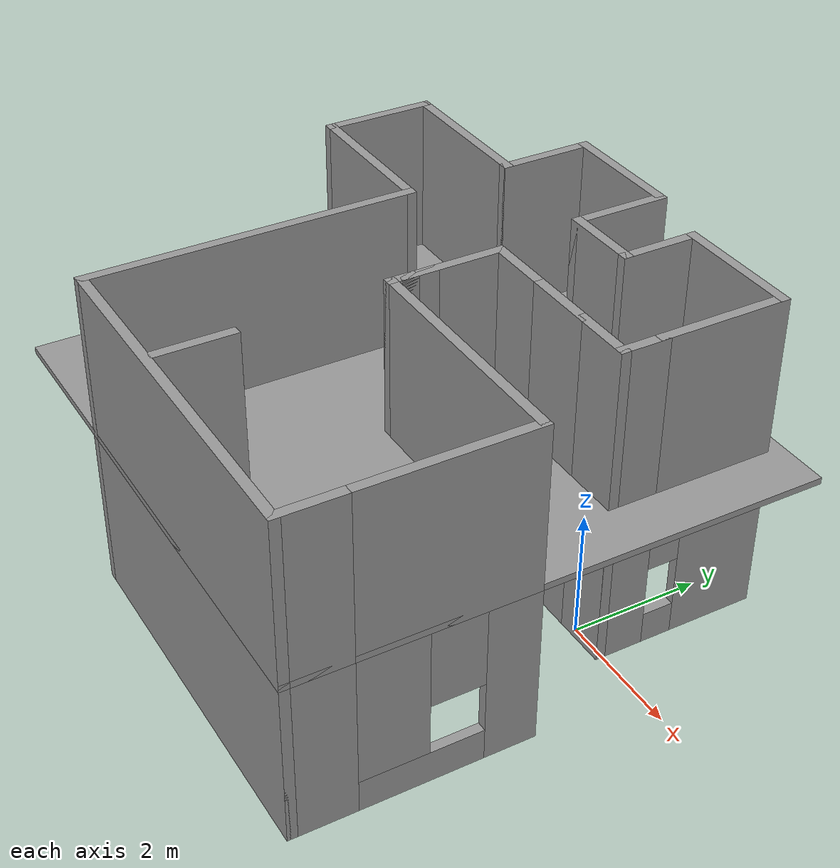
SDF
<?xml version='1.0'?>
<sdf version='1.6'>
  <model name='lidar_basic_building'>
    <pose frame=''>-2.615 -1.23 0 0 -0 0</pose>
    <link name='Floor_3'>
      <collision name='Floor_3_Collision'>
        <geometry>
          <box>
            <size>8.1 7.95 0.1</size>
          </box>
        </geometry>
        <pose frame=''>0 0 0.05 0 -0 0</pose>
      </collision>
      <visual name='Floor_3_Visual'>
        <pose frame=''>0 0 0.05 0 -0 0</pose>
        <geometry>
          <box>
            <size>8.1 7.95 0.1</size>
          </box>
        </geometry>
        <material>
          <script>
            <uri>file://media/materials/scripts/gazebo.material</uri>
            <name>Gazebo/Grey</name>
          </script>
          <ambient>1 1 1 1</ambient>
        </material>
        <meta>
          <layer>1</layer>
        </meta>
      </visual>
      <pose frame=''>0 -0 2.5 0 -0 0</pose>
    </link>
    <link name='Wall_10'>
      <collision name='Wall_10_Collision'>
        <geometry>
          <box>
            <size>1.5 0.15 2.5</size>
          </box>
        </geometry>
        <pose frame=''>0 0 1.25 0 -0 0</pose>
      </collision>
      <visual name='Wall_10_Visual'>
        <pose frame=''>0 0 1.25 0 -0 0</pose>
        <geometry>
          <box>
            <size>1.5 0.15 2.5</size>
          </box>
        </geometry>
        <material>
          <script>
            <uri>file://media/materials/scripts/gazebo.material</uri>
            <name>Gazebo/Grey</name>
          </script>
          <ambient>1 1 1 1</ambient>
        </material>
        <meta>
          <layer>0</layer>
        </meta>
      </visual>
      <pose frame=''>-1.625 3.225 0 0 -0 1.5708</pose>
    </link>
    <link name='Wall_102'>
      <collision name='Wall_102_Collision'>
        <geometry>
          <box>
            <size>3.75 0.15 2.5</size>
          </box>
        </geometry>
        <pose frame=''>0 0 1.25 0 -0 0</pose>
      </collision>
      <visual name='Wall_102_Visual'>
        <pose frame=''>0 0 1.25 0 -0 0</pose>
        <geometry>
          <box>
            <size>3.75 0.15 2.5</size>
          </box>
        </geometry>
        <material>
          <script>
            <uri>file://media/materials/scripts/gazebo.material</uri>
            <name>Gazebo/Grey</name>
          </script>
          <ambient>1 1 1 1</ambient>
        </material>
        <meta>
          <layer>0</layer>
        </meta>
      </visual>
      <pose frame=''>2.175 -0.45 0 0 -0 3.14159</pose>
    </link>
    <link name='Wall_103'>
      <collision name='Wall_103_Collision'>
        <geometry>
          <box>
            <size>0.75 0.15 2.5</size>
          </box>
        </geometry>
        <pose frame=''>0 0 1.25 0 -0 0</pose>
      </collision>
      <visual name='Wall_103_Visual'>
        <pose frame=''>0 0 1.25 0 -0 0</pose>
        <geometry>
          <box>
            <size>0.75 0.15 2.5</size>
          </box>
        </geometry>
        <material>
          <script>
            <uri>file://media/materials/scripts/gazebo.material</uri>
            <name>Gazebo/Grey</name>
          </script>
          <ambient>1 1 1 1</ambient>
        </material>
        <meta>
          <layer>0</layer>
        </meta>
      </visual>
      <pose frame=''>0.375 -0.15 0 0 -0 1.5708</pose>
    </link>
    <link name='Wall_105'>
      <collision name='Wall_105_Collision'>
        <geometry>
          <box>
            <size>1.25 0.15 2.5</size>
          </box>
        </geometry>
        <pose frame=''>0 0 1.25 0 -0 0</pose>
      </collision>
      <visual name='Wall_105_Visual'>
        <pose frame=''>0 0 1.25 0 -0 0</pose>
        <geometry>
          <box>
            <size>1.25 0.15 2.5</size>
          </box>
        </geometry>
        <material>
          <script>
            <uri>file://media/materials/scripts/gazebo.material</uri>
            <name>Gazebo/Grey</name>
          </script>
          <ambient>1 1 1 1</ambient>
        </material>
        <meta>
          <layer>0</layer>
        </meta>
      </visual>
      <pose frame=''>0.4735 -3.28546 0 0 -0 1.5708</pose>
    </link>
    <link name='Wall_107'>
      <collision name='Wall_107_Collision'>
        <geometry>
          <box>
            <size>2.75 0.15 2.5</size>
          </box>
        </geometry>
        <pose frame=''>0 0 1.25 0 -0 0</pose>
      </collision>
      <visual name='Wall_107_Visual'>
        <pose frame=''>0 0 1.25 0 -0 0</pose>
        <geometry>
          <box>
            <size>2.75 0.15 2.5</size>
          </box>
        </geometry>
        <material>
          <script>
            <uri>file://media/materials/scripts/gazebo.material</uri>
            <name>Gazebo/Grey</name>
          </script>
          <ambient>1 1 1 1</ambient>
        </material>
        <meta>
          <layer>1</layer>
        </meta>
      </visual>
      <pose frame=''>3.975 -1.75 2.5 0 -0 -1.5708</pose>
    </link>
    <link name='Wall_108'>
      <collision name='Wall_108_Collision'>
        <geometry>
          <box>
            <size>1 0.15 2.5</size>
          </box>
        </geometry>
        <pose frame=''>0 0 1.25 0 -0 0</pose>
      </collision>
      <visual name='Wall_108_Visual'>
        <pose frame=''>0 0 1.25 0 -0 0</pose>
        <geometry>
          <box>
            <size>1 0.15 2.5</size>
          </box>
        </geometry>
        <material>
          <script>
            <uri>file://media/materials/scripts/gazebo.material</uri>
            <name>Gazebo/Grey</name>
          </script>
          <ambient>1 1 1 1</ambient>
        </material>
        <meta>
          <layer>1</layer>
        </meta>
      </visual>
      <pose frame=''>3.975 -3.475 2.5 0 -0 -1.5708</pose>
    </link>
    <link name='Wall_109'>
      <collision name='Wall_109_Collision'>
        <geometry>
          <box>
            <size>5.75 0.15 2.5</size>
          </box>
        </geometry>
        <pose frame=''>0 0 1.25 0 -0 0</pose>
      </collision>
      <visual name='Wall_109_Visual'>
        <pose frame=''>0 0 1.25 0 -0 0</pose>
        <geometry>
          <box>
            <size>5.75 0.15 2.5</size>
          </box>
        </geometry>
        <material>
          <script>
            <uri>file://media/materials/scripts/gazebo.material</uri>
            <name>Gazebo/Grey</name>
          </script>
          <ambient>1 1 1 1</ambient>
        </material>
        <meta>
          <layer>1</layer>
        </meta>
      </visual>
      <pose frame=''>1.175 -3.9 2.5 0 -0 3.14159</pose>
    </link>
    <link name='Wall_11'>
      <pose frame=''>-0.7 3.9 0 0 -0 0</pose>
      <visual name='Wall_11_Visual_0'>
        <pose frame=''>-0.743057 0 1.25 0 -0 0</pose>
        <geometry>
          <box>
            <size>0.513887 0.15 2.5</size>
          </box>
        </geometry>
        <material>
          <script>
            <uri>file://media/materials/scripts/gazebo.material</uri>
            <name>Gazebo/Grey</name>
          </script>
          <ambient>1 1 1 1</ambient>
        </material>
        <meta>
          <layer>0</layer>
        </meta>
      </visual>
      <collision name='Wall_11_Collision_0'>
        <geometry>
          <box>
            <size>0.513887 0.15 2.5</size>
          </box>
        </geometry>
        <pose frame=''>-0.743057 0 1.25 0 -0 0</pose>
      </collision>
      <visual name='Wall_11_Visual_1'>
        <pose frame=''>0.706943 0 1.25 0 -0 0</pose>
        <geometry>
          <box>
            <size>0.586113 0.15 2.5</size>
          </box>
        </geometry>
        <material>
          <script>
            <uri>file://media/materials/scripts/gazebo.material</uri>
            <name>Gazebo/Grey</name>
          </script>
          <ambient>1 1 1 1</ambient>
        </material>
        <meta>
          <layer>0</layer>
        </meta>
      </visual>
      <collision name='Wall_11_Collision_1'>
        <geometry>
          <box>
            <size>0.586113 0.15 2.5</size>
          </box>
        </geometry>
        <pose frame=''>0.706943 0 1.25 0 -0 0</pose>
      </collision>
      <visual name='Wall_11_Visual_2'>
        <pose frame=''>-0.036113 0 2.25 0 -0 0</pose>
        <geometry>
          <box>
            <size>0.9 0.15 0.5</size>
          </box>
        </geometry>
        <material>
          <script>
            <uri>file://media/materials/scripts/gazebo.material</uri>
            <name>Gazebo/Grey</name>
          </script>
          <ambient>1 1 1 1</ambient>
        </material>
        <meta>
          <layer>0</layer>
        </meta>
      </visual>
      <collision name='Wall_11_Collision_2'>
        <geometry>
          <box>
            <size>0.9 0.15 0.5</size>
          </box>
        </geometry>
        <pose frame=''>-0.036113 0 2.25 0 -0 0</pose>
      </collision>
    </link>
    <link name='Wall_110'>
      <collision name='Wall_110_Collision'>
        <geometry>
          <box>
            <size>5 0.15 2.5</size>
          </box>
        </geometry>
        <pose frame=''>0 0 1.25 0 -0 0</pose>
      </collision>
      <visual name='Wall_110_Visual'>
        <pose frame=''>0 0 1.25 0 -0 0</pose>
        <geometry>
          <box>
            <size>5 0.15 2.5</size>
          </box>
        </geometry>
        <material>
          <script>
            <uri>file://media/materials/scripts/gazebo.material</uri>
            <name>Gazebo/Grey</name>
          </script>
          <ambient>1 1 1 1</ambient>
        </material>
        <meta>
          <layer>1</layer>
        </meta>
      </visual>
      <pose frame=''>-1.625 -1.475 2.5 0 -0 1.5708</pose>
    </link>
    <link name='Wall_111'>
      <collision name='Wall_111_Collision'>
        <geometry>
          <box>
            <size>2.5 0.15 2.5</size>
          </box>
        </geometry>
        <pose frame=''>0 0 1.25 0 -0 0</pose>
      </collision>
      <visual name='Wall_111_Visual'>
        <pose frame=''>0 0 1.25 0 -0 0</pose>
        <geometry>
          <box>
            <size>2.5 0.15 2.5</size>
          </box>
        </geometry>
        <material>
          <script>
            <uri>file://media/materials/scripts/gazebo.material</uri>
            <name>Gazebo/Grey</name>
          </script>
          <ambient>1 1 1 1</ambient>
        </material>
        <meta>
          <layer>1</layer>
        </meta>
      </visual>
      <pose frame=''>-2.8 0.95 2.5 0 -0 3.14159</pose>
    </link>
    <link name='Wall_112'>
      <collision name='Wall_112_Collision'>
        <geometry>
          <box>
            <size>1.75 0.15 2.5</size>
          </box>
        </geometry>
        <pose frame=''>0 0 1.25 0 -0 0</pose>
      </collision>
      <visual name='Wall_112_Visual'>
        <pose frame=''>0 0 1.25 0 -0 0</pose>
        <geometry>
          <box>
            <size>1.75 0.15 2.5</size>
          </box>
        </geometry>
        <material>
          <script>
            <uri>file://media/materials/scripts/gazebo.material</uri>
            <name>Gazebo/Grey</name>
          </script>
          <ambient>1 1 1 1</ambient>
        </material>
        <meta>
          <layer>1</layer>
        </meta>
      </visual>
      <pose frame=''>-3.975 1.75 2.5 0 -0 1.5708</pose>
    </link>
    <link name='Wall_113'>
      <collision name='Wall_113_Collision'>
        <geometry>
          <box>
            <size>2.5 0.15 2.5</size>
          </box>
        </geometry>
        <pose frame=''>0 0 1.25 0 -0 0</pose>
      </collision>
      <visual name='Wall_113_Visual'>
        <pose frame=''>0 0 1.25 0 -0 0</pose>
        <geometry>
          <box>
            <size>2.5 0.15 2.5</size>
          </box>
        </geometry>
        <material>
          <script>
            <uri>file://media/materials/scripts/gazebo.material</uri>
            <name>Gazebo/Grey</name>
          </script>
          <ambient>1 1 1 1</ambient>
        </material>
        <meta>
          <layer>1</layer>
        </meta>
      </visual>
      <pose frame=''>-2.8 2.55 2.5 0 -0 0</pose>
    </link>
    <link name='Wall_114'>
      <collision name='Wall_114_Collision'>
        <geometry>
          <box>
            <size>1.5 0.15 2.5</size>
          </box>
        </geometry>
        <pose frame=''>0 0 1.25 0 -0 0</pose>
      </collision>
      <visual name='Wall_114_Visual'>
        <pose frame=''>0 0 1.25 0 -0 0</pose>
        <geometry>
          <box>
            <size>1.5 0.15 2.5</size>
          </box>
        </geometry>
        <material>
          <script>
            <uri>file://media/materials/scripts/gazebo.material</uri>
            <name>Gazebo/Grey</name>
          </script>
          <ambient>1 1 1 1</ambient>
        </material>
        <meta>
          <layer>1</layer>
        </meta>
      </visual>
      <pose frame=''>-1.625 3.225 2.5 0 -0 1.5708</pose>
    </link>
    <link name='Wall_115'>
      <collision name='Wall_115_Collision'>
        <geometry>
          <box>
            <size>2 0.15 2.5</size>
          </box>
        </geometry>
        <pose frame=''>0 0 1.25 0 -0 0</pose>
      </collision>
      <visual name='Wall_115_Visual'>
        <pose frame=''>0 0 1.25 0 -0 0</pose>
        <geometry>
          <box>
            <size>2 0.15 2.5</size>
          </box>
        </geometry>
        <material>
          <script>
            <uri>file://media/materials/scripts/gazebo.material</uri>
            <name>Gazebo/Grey</name>
          </script>
          <ambient>1 1 1 1</ambient>
        </material>
        <meta>
          <layer>1</layer>
        </meta>
      </visual>
      <pose frame=''>-0.7 3.9 2.5 0 -0 0</pose>
    </link>
    <link name='Wall_116'>
      <collision name='Wall_116_Collision'>
        <geometry>
          <box>
            <size>1.5 0.15 2.5</size>
          </box>
        </geometry>
        <pose frame=''>0 0 1.25 0 -0 0</pose>
      </collision>
      <visual name='Wall_116_Visual'>
        <pose frame=''>0 0 1.25 0 -0 0</pose>
        <geometry>
          <box>
            <size>1.5 0.15 2.5</size>
          </box>
        </geometry>
        <material>
          <script>
            <uri>file://media/materials/scripts/gazebo.material</uri>
            <name>Gazebo/Grey</name>
          </script>
          <ambient>1 1 1 1</ambient>
        </material>
        <meta>
          <layer>1</layer>
        </meta>
      </visual>
      <pose frame=''>0.225 3.225 2.5 0 -0 -1.5708</pose>
    </link>
    <link name='Wall_117'>
      <collision name='Wall_117_Collision'>
        <geometry>
          <box>
            <size>1.25 0.15 2.5</size>
          </box>
        </geometry>
        <pose frame=''>0 0 1.25 0 -0 0</pose>
      </collision>
      <visual name='Wall_117_Visual'>
        <pose frame=''>0 0 1.25 0 -0 0</pose>
        <geometry>
          <box>
            <size>1.25 0.15 2.5</size>
          </box>
        </geometry>
        <material>
          <script>
            <uri>file://media/materials/scripts/gazebo.material</uri>
            <name>Gazebo/Grey</name>
          </script>
          <ambient>1 1 1 1</ambient>
        </material>
        <meta>
          <layer>1</layer>
        </meta>
      </visual>
      <pose frame=''>0.775 2.55 2.5 0 -0 0</pose>
    </link>
    <link name='Wall_118'>
      <collision name='Wall_118_Collision'>
        <geometry>
          <box>
            <size>1.25 0.15 2.5</size>
          </box>
        </geometry>
        <pose frame=''>0 0 1.25 0 -0 0</pose>
      </collision>
      <visual name='Wall_118_Visual'>
        <pose frame=''>0 0 1.25 0 -0 0</pose>
        <geometry>
          <box>
            <size>1.25 0.15 2.5</size>
          </box>
        </geometry>
        <material>
          <script>
            <uri>file://media/materials/scripts/gazebo.material</uri>
            <name>Gazebo/Grey</name>
          </script>
          <ambient>1 1 1 1</ambient>
        </material>
        <meta>
          <layer>1</layer>
        </meta>
      </visual>
      <pose frame=''>1.325 3.1 2.5 0 -0 1.5708</pose>
    </link>
    <link name='Wall_119'>
      <collision name='Wall_119_Collision'>
        <geometry>
          <box>
            <size>2 0.15 2.5</size>
          </box>
        </geometry>
        <pose frame=''>0 0 1.25 0 -0 0</pose>
      </collision>
      <visual name='Wall_119_Visual'>
        <pose frame=''>0 0 1.25 0 -0 0</pose>
        <geometry>
          <box>
            <size>2 0.15 2.5</size>
          </box>
        </geometry>
        <material>
          <script>
            <uri>file://media/materials/scripts/gazebo.material</uri>
            <name>Gazebo/Grey</name>
          </script>
          <ambient>1 1 1 1</ambient>
        </material>
        <meta>
          <layer>1</layer>
        </meta>
      </visual>
      <pose frame=''>2.25 3.65 2.5 0 -0 0</pose>
    </link>
    <link name='Wall_120'>
      <collision name='Wall_120_Collision'>
        <geometry>
          <box>
            <size>2 0.15 2.5</size>
          </box>
        </geometry>
        <pose frame=''>0 0 1.25 0 -0 0</pose>
      </collision>
      <visual name='Wall_120_Visual'>
        <pose frame=''>0 0 1.25 0 -0 0</pose>
        <geometry>
          <box>
            <size>2 0.15 2.5</size>
          </box>
        </geometry>
        <material>
          <script>
            <uri>file://media/materials/scripts/gazebo.material</uri>
            <name>Gazebo/Grey</name>
          </script>
          <ambient>1 1 1 1</ambient>
        </material>
        <meta>
          <layer>1</layer>
        </meta>
      </visual>
      <pose frame=''>3.175 2.725 2.5 0 -0 -1.5708</pose>
    </link>
    <link name='Wall_121'>
      <collision name='Wall_121_Collision'>
        <geometry>
          <box>
            <size>0.75 0.15 2.5</size>
          </box>
        </geometry>
        <pose frame=''>0 0 1.25 0 -0 0</pose>
      </collision>
      <visual name='Wall_121_Visual'>
        <pose frame=''>0 0 1.25 0 -0 0</pose>
        <geometry>
          <box>
            <size>0.75 0.15 2.5</size>
          </box>
        </geometry>
        <material>
          <script>
            <uri>file://media/materials/scripts/gazebo.material</uri>
            <name>Gazebo/Grey</name>
          </script>
          <ambient>1 1 1 1</ambient>
        </material>
        <meta>
          <layer>1</layer>
        </meta>
      </visual>
      <pose frame=''>3.175 1.5 2.5 0 -0 -1.5708</pose>
    </link>
    <link name='Wall_122'>
      <collision name='Wall_122_Collision'>
        <geometry>
          <box>
            <size>1 0.15 2.5</size>
          </box>
        </geometry>
        <pose frame=''>0 0 1.25 0 -0 0</pose>
      </collision>
      <visual name='Wall_122_Visual'>
        <pose frame=''>0 0 1.25 0 -0 0</pose>
        <geometry>
          <box>
            <size>1 0.15 2.5</size>
          </box>
        </geometry>
        <material>
          <script>
            <uri>file://media/materials/scripts/gazebo.material</uri>
            <name>Gazebo/Grey</name>
          </script>
          <ambient>1 1 1 1</ambient>
        </material>
        <meta>
          <layer>1</layer>
        </meta>
      </visual>
      <pose frame=''>2.75 1.2 2.5 0 -0 3.14159</pose>
    </link>
    <link name='Wall_123'>
      <collision name='Wall_123_Collision'>
        <geometry>
          <box>
            <size>1.25 0.15 2.5</size>
          </box>
        </geometry>
        <pose frame=''>0 0 1.25 0 -0 0</pose>
      </collision>
      <visual name='Wall_123_Visual'>
        <pose frame=''>0 0 1.25 0 -0 0</pose>
        <geometry>
          <box>
            <size>1.25 0.15 2.5</size>
          </box>
        </geometry>
        <material>
          <script>
            <uri>file://media/materials/scripts/gazebo.material</uri>
            <name>Gazebo/Grey</name>
          </script>
          <ambient>1 1 1 1</ambient>
        </material>
        <meta>
          <layer>1</layer>
        </meta>
      </visual>
      <pose frame=''>1.775 1.2 2.5 0 -0 3.14159</pose>
    </link>
    <link name='Wall_124'>
      <collision name='Wall_124_Collision'>
        <geometry>
          <box>
            <size>1 0.15 2.5</size>
          </box>
        </geometry>
        <pose frame=''>0 0 1.25 0 -0 0</pose>
      </collision>
      <visual name='Wall_124_Visual'>
        <pose frame=''>0 0 1.25 0 -0 0</pose>
        <geometry>
          <box>
            <size>1 0.15 2.5</size>
          </box>
        </geometry>
        <material>
          <script>
            <uri>file://media/materials/scripts/gazebo.material</uri>
            <name>Gazebo/Grey</name>
          </script>
          <ambient>1 1 1 1</ambient>
        </material>
        <meta>
          <layer>1</layer>
        </meta>
      </visual>
      <pose frame=''>0.8 1.2 2.5 0 -0 3.14159</pose>
    </link>
    <link name='Wall_125'>
      <collision name='Wall_125_Collision'>
        <geometry>
          <box>
            <size>1.5 0.15 2.5</size>
          </box>
        </geometry>
        <pose frame=''>0 0 1.25 0 -0 0</pose>
      </collision>
      <visual name='Wall_125_Visual'>
        <pose frame=''>0 0 1.25 0 -0 0</pose>
        <geometry>
          <box>
            <size>1.5 0.15 2.5</size>
          </box>
        </geometry>
        <material>
          <script>
            <uri>file://media/materials/scripts/gazebo.material</uri>
            <name>Gazebo/Grey</name>
          </script>
          <ambient>1 1 1 1</ambient>
        </material>
        <meta>
          <layer>1</layer>
        </meta>
      </visual>
      <pose frame=''>0.375 0.525 2.5 0 -0 -1.5708</pose>
    </link>
    <link name='Wall_126'>
      <collision name='Wall_126_Collision'>
        <geometry>
          <box>
            <size>0.25 0.15 2.5</size>
          </box>
        </geometry>
        <pose frame=''>0 0 1.25 0 -0 0</pose>
      </collision>
      <visual name='Wall_126_Visual'>
        <pose frame=''>0 0 1.25 0 -0 0</pose>
        <geometry>
          <box>
            <size>0.25 0.15 2.5</size>
          </box>
        </geometry>
        <material>
          <script>
            <uri>file://media/materials/scripts/gazebo.material</uri>
            <name>Gazebo/Grey</name>
          </script>
          <ambient>1 1 1 1</ambient>
        </material>
        <meta>
          <layer>1</layer>
        </meta>
      </visual>
      <pose frame=''>0.375 -0.2 2.5 0 -0 -1.5708</pose>
    </link>
    <link name='Wall_127'>
      <collision name='Wall_127_Collision'>
        <geometry>
          <box>
            <size>0.15 0.15 2.5</size>
          </box>
        </geometry>
        <pose frame=''>0 0 1.25 0 -0 0</pose>
      </collision>
      <visual name='Wall_127_Visual'>
        <pose frame=''>0 0 1.25 0 -0 0</pose>
        <geometry>
          <box>
            <size>0.15 0.15 2.5</size>
          </box>
        </geometry>
        <material>
          <script>
            <uri>file://media/materials/scripts/gazebo.material</uri>
            <name>Gazebo/Grey</name>
          </script>
          <ambient>1 1 1 1</ambient>
        </material>
        <meta>
          <layer>1</layer>
        </meta>
      </visual>
      <pose frame=''>0.375 -0.45 2.5 0 -0 0</pose>
    </link>
    <link name='Wall_128'>
      <collision name='Wall_128_Collision'>
        <geometry>
          <box>
            <size>3.75 0.15 2.5</size>
          </box>
        </geometry>
        <pose frame=''>0 0 1.25 0 -0 0</pose>
      </collision>
      <visual name='Wall_128_Visual'>
        <pose frame=''>0 0 1.25 0 -0 0</pose>
        <geometry>
          <box>
            <size>3.75 0.15 2.5</size>
          </box>
        </geometry>
        <material>
          <script>
            <uri>file://media/materials/scripts/gazebo.material</uri>
            <name>Gazebo/Grey</name>
          </script>
          <ambient>1 1 1 1</ambient>
        </material>
        <meta>
          <layer>1</layer>
        </meta>
      </visual>
      <pose frame=''>2.175 -0.45 2.5 0 -0 3.14159</pose>
    </link>
    <link name='Wall_129'>
      <collision name='Wall_129_Collision'>
        <geometry>
          <box>
            <size>0.75 0.15 2.5</size>
          </box>
        </geometry>
        <pose frame=''>0 0 1.25 0 -0 0</pose>
      </collision>
      <visual name='Wall_129_Visual'>
        <pose frame=''>0 0 1.25 0 -0 0</pose>
        <geometry>
          <box>
            <size>0.75 0.15 2.5</size>
          </box>
        </geometry>
        <material>
          <script>
            <uri>file://media/materials/scripts/gazebo.material</uri>
            <name>Gazebo/Grey</name>
          </script>
          <ambient>1 1 1 1</ambient>
        </material>
        <meta>
          <layer>1</layer>
        </meta>
      </visual>
      <pose frame=''>0.375 -0.15 2.5 0 -0 1.5708</pose>
    </link>
    <link name='Wall_13'>
      <collision name='Wall_13_Collision'>
        <geometry>
          <box>
            <size>1.5 0.15 2.5</size>
          </box>
        </geometry>
        <pose frame=''>0 0 1.25 0 -0 0</pose>
      </collision>
      <visual name='Wall_13_Visual'>
        <pose frame=''>0 0 1.25 0 -0 0</pose>
        <geometry>
          <box>
            <size>1.5 0.15 2.5</size>
          </box>
        </geometry>
        <material>
          <script>
            <uri>file://media/materials/scripts/gazebo.material</uri>
            <name>Gazebo/Grey</name>
          </script>
          <ambient>1 1 1 1</ambient>
        </material>
        <meta>
          <layer>0</layer>
        </meta>
      </visual>
      <pose frame=''>0.225 3.225 0 0 -0 -1.5708</pose>
    </link>
    <link name='Wall_130'>
      <collision name='Wall_130_Collision'>
        <geometry>
          <box>
            <size>1.25 0.15 2.5</size>
          </box>
        </geometry>
        <pose frame=''>0 0 1.25 0 -0 0</pose>
      </collision>
      <visual name='Wall_130_Visual'>
        <pose frame=''>0 0 1.25 0 -0 0</pose>
        <geometry>
          <box>
            <size>1.25 0.15 2.5</size>
          </box>
        </geometry>
        <material>
          <script>
            <uri>file://media/materials/scripts/gazebo.material</uri>
            <name>Gazebo/Grey</name>
          </script>
          <ambient>1 1 1 1</ambient>
        </material>
        <meta>
          <layer>1</layer>
        </meta>
      </visual>
      <pose frame=''>0.4735 -3.28546 2.5 0 -0 1.5708</pose>
    </link>
    <link name='Wall_14'>
      <collision name='Wall_14_Collision'>
        <geometry>
          <box>
            <size>1.25 0.15 2.5</size>
          </box>
        </geometry>
        <pose frame=''>0 0 1.25 0 -0 0</pose>
      </collision>
      <visual name='Wall_14_Visual'>
        <pose frame=''>0 0 1.25 0 -0 0</pose>
        <geometry>
          <box>
            <size>1.25 0.15 2.5</size>
          </box>
        </geometry>
        <material>
          <script>
            <uri>file://media/materials/scripts/gazebo.material</uri>
            <name>Gazebo/Grey</name>
          </script>
          <ambient>1 1 1 1</ambient>
        </material>
        <meta>
          <layer>0</layer>
        </meta>
      </visual>
      <pose frame=''>0.775 2.55 0 0 -0 0</pose>
    </link>
    <link name='Wall_15'>
      <collision name='Wall_15_Collision'>
        <geometry>
          <box>
            <size>1.25 0.15 2.5</size>
          </box>
        </geometry>
        <pose frame=''>0 0 1.25 0 -0 0</pose>
      </collision>
      <visual name='Wall_15_Visual'>
        <pose frame=''>0 0 1.25 0 -0 0</pose>
        <geometry>
          <box>
            <size>1.25 0.15 2.5</size>
          </box>
        </geometry>
        <material>
          <script>
            <uri>file://media/materials/scripts/gazebo.material</uri>
            <name>Gazebo/Grey</name>
          </script>
          <ambient>1 1 1 1</ambient>
        </material>
        <meta>
          <layer>0</layer>
        </meta>
      </visual>
      <pose frame=''>1.325 3.1 0 0 -0 1.5708</pose>
    </link>
    <link name='Wall_16'>
      <pose frame=''>2.25 3.65 0 0 -0 0</pose>
      <visual name='Wall_16_Visual_0'>
        <pose frame=''>-0.672182 0 1.25 0 -0 0</pose>
        <geometry>
          <box>
            <size>0.655637 0.15 2.5</size>
          </box>
        </geometry>
        <material>
          <script>
            <uri>file://media/materials/scripts/gazebo.material</uri>
            <name>Gazebo/Grey</name>
          </script>
          <ambient>1 1 1 1</ambient>
        </material>
        <meta>
          <layer>0</layer>
        </meta>
      </visual>
      <collision name='Wall_16_Collision_0'>
        <geometry>
          <box>
            <size>0.655637 0.15 2.5</size>
          </box>
        </geometry>
        <pose frame=''>-0.672182 0 1.25 0 -0 0</pose>
      </collision>
      <visual name='Wall_16_Visual_1'>
        <pose frame=''>0.327818 0 0.25 0 -0 0</pose>
        <geometry>
          <box>
            <size>1.34436 0.15 0.5</size>
          </box>
        </geometry>
        <material>
          <script>
            <uri>file://media/materials/scripts/gazebo.material</uri>
            <name>Gazebo/Grey</name>
          </script>
          <ambient>1 1 1 1</ambient>
        </material>
        <meta>
          <layer>0</layer>
        </meta>
      </visual>
      <collision name='Wall_16_Collision_1'>
        <geometry>
          <box>
            <size>1.34436 0.15 0.5</size>
          </box>
        </geometry>
        <pose frame=''>0.327818 0 0.25 0 -0 0</pose>
      </collision>
      <visual name='Wall_16_Visual_2'>
        <pose frame=''>0.727818 0 1.5 0 -0 0</pose>
        <geometry>
          <box>
            <size>0.544363 0.15 2</size>
          </box>
        </geometry>
        <material>
          <script>
            <uri>file://media/materials/scripts/gazebo.material</uri>
            <name>Gazebo/Grey</name>
          </script>
          <ambient>1 1 1 1</ambient>
        </material>
        <meta>
          <layer>0</layer>
        </meta>
      </visual>
      <collision name='Wall_16_Collision_2'>
        <geometry>
          <box>
            <size>0.544363 0.15 2</size>
          </box>
        </geometry>
        <pose frame=''>0.727818 0 1.5 0 -0 0</pose>
      </collision>
      <visual name='Wall_16_Visual_3'>
        <pose frame=''>0.055637 0 1.9 0 -0 0</pose>
        <geometry>
          <box>
            <size>0.8 0.15 1.2</size>
          </box>
        </geometry>
        <material>
          <script>
            <uri>file://media/materials/scripts/gazebo.material</uri>
            <name>Gazebo/Grey</name>
          </script>
          <ambient>1 1 1 1</ambient>
        </material>
        <meta>
          <layer>0</layer>
        </meta>
      </visual>
      <collision name='Wall_16_Collision_3'>
        <geometry>
          <box>
            <size>0.8 0.15 1.2</size>
          </box>
        </geometry>
        <pose frame=''>0.055637 0 1.9 0 -0 0</pose>
      </collision>
    </link>
    <link name='Wall_17'>
      <pose frame=''>3.175 2.725 0 0 -0 -1.5708</pose>
      <visual name='Wall_17_Visual_0'>
        <pose frame=''>-0.317206 0 1.25 0 -0 0</pose>
        <geometry>
          <box>
            <size>1.36559 0.15 2.5</size>
          </box>
        </geometry>
        <material>
          <script>
            <uri>file://media/materials/scripts/gazebo.material</uri>
            <name>Gazebo/Grey</name>
          </script>
          <ambient>1 1 1 1</ambient>
        </material>
        <meta>
          <layer>0</layer>
        </meta>
      </visual>
      <collision name='Wall_17_Collision_0'>
        <geometry>
          <box>
            <size>1.36559 0.15 2.5</size>
          </box>
        </geometry>
        <pose frame=''>-0.317206 0 1.25 0 -0 0</pose>
      </collision>
      <visual name='Wall_17_Visual_1'>
        <pose frame=''>0.682794 0 0.25 0 -0 0</pose>
        <geometry>
          <box>
            <size>0.634412 0.15 0.5</size>
          </box>
        </geometry>
        <material>
          <script>
            <uri>file://media/materials/scripts/gazebo.material</uri>
            <name>Gazebo/Grey</name>
          </script>
          <ambient>1 1 1 1</ambient>
        </material>
        <meta>
          <layer>0</layer>
        </meta>
      </visual>
      <collision name='Wall_17_Collision_1'>
        <geometry>
          <box>
            <size>0.634412 0.15 0.5</size>
          </box>
        </geometry>
        <pose frame=''>0.682794 0 0.25 0 -0 0</pose>
      </collision>
      <visual name='Wall_17_Visual_2'>
        <pose frame=''>0.682794 0 1.9 0 -0 0</pose>
        <geometry>
          <box>
            <size>0.634412 0.15 1.2</size>
          </box>
        </geometry>
        <material>
          <script>
            <uri>file://media/materials/scripts/gazebo.material</uri>
            <name>Gazebo/Grey</name>
          </script>
          <ambient>1 1 1 1</ambient>
        </material>
        <meta>
          <layer>0</layer>
        </meta>
      </visual>
      <collision name='Wall_17_Collision_2'>
        <geometry>
          <box>
            <size>0.634412 0.15 1.2</size>
          </box>
        </geometry>
        <pose frame=''>0.682794 0 1.9 0 -0 0</pose>
      </collision>
    </link>
    <link name='Wall_18'>
      <collision name='Wall_18_Collision'>
        <geometry>
          <box>
            <size>0.75 0.15 2.5</size>
          </box>
        </geometry>
        <pose frame=''>0 0 1.25 0 -0 0</pose>
      </collision>
      <visual name='Wall_18_Visual'>
        <pose frame=''>0 0 1.25 0 -0 0</pose>
        <geometry>
          <box>
            <size>0.75 0.15 2.5</size>
          </box>
        </geometry>
        <material>
          <script>
            <uri>file://media/materials/scripts/gazebo.material</uri>
            <name>Gazebo/Grey</name>
          </script>
          <ambient>1 1 1 1</ambient>
        </material>
        <meta>
          <layer>0</layer>
        </meta>
      </visual>
      <pose frame=''>3.175 1.5 0 0 -0 -1.5708</pose>
    </link>
    <link name='Wall_19'>
      <collision name='Wall_19_Collision'>
        <geometry>
          <box>
            <size>1 0.15 2.5</size>
          </box>
        </geometry>
        <pose frame=''>0 0 1.25 0 -0 0</pose>
      </collision>
      <visual name='Wall_19_Visual'>
        <pose frame=''>0 0 1.25 0 -0 0</pose>
        <geometry>
          <box>
            <size>1 0.15 2.5</size>
          </box>
        </geometry>
        <material>
          <script>
            <uri>file://media/materials/scripts/gazebo.material</uri>
            <name>Gazebo/Grey</name>
          </script>
          <ambient>1 1 1 1</ambient>
        </material>
        <meta>
          <layer>0</layer>
        </meta>
      </visual>
      <pose frame=''>2.75 1.2 0 0 -0 3.14159</pose>
    </link>
    <link name='Wall_2'>
      <pose frame=''>3.975 -1.75 0 0 -0 -1.5708</pose>
      <visual name='Wall_2_Visual_0'>
        <pose frame=''>-0.981831 0 1.25 0 -0 0</pose>
        <geometry>
          <box>
            <size>0.786338 0.15 2.5</size>
          </box>
        </geometry>
        <material>
          <script>
            <uri>file://media/materials/scripts/gazebo.material</uri>
            <name>Gazebo/Grey</name>
          </script>
          <ambient>1 1 1 1</ambient>
        </material>
        <meta>
          <layer>0</layer>
        </meta>
      </visual>
      <collision name='Wall_2_Collision_0'>
        <geometry>
          <box>
            <size>0.786338 0.15 2.5</size>
          </box>
        </geometry>
        <pose frame=''>-0.981831 0 1.25 0 -0 0</pose>
      </collision>
      <visual name='Wall_2_Visual_1'>
        <pose frame=''>0.393169 0 0.25 0 -0 0</pose>
        <geometry>
          <box>
            <size>1.96366 0.15 0.5</size>
          </box>
        </geometry>
        <material>
          <script>
            <uri>file://media/materials/scripts/gazebo.material</uri>
            <name>Gazebo/Grey</name>
          </script>
          <ambient>1 1 1 1</ambient>
        </material>
        <meta>
          <layer>0</layer>
        </meta>
      </visual>
      <collision name='Wall_2_Collision_1'>
        <geometry>
          <box>
            <size>1.96366 0.15 0.5</size>
          </box>
        </geometry>
        <pose frame=''>0.393169 0 0.25 0 -0 0</pose>
      </collision>
      <visual name='Wall_2_Visual_2'>
        <pose frame=''>0.793169 0 1.5 0 -0 0</pose>
        <geometry>
          <box>
            <size>1.16366 0.15 2</size>
          </box>
        </geometry>
        <material>
          <script>
            <uri>file://media/materials/scripts/gazebo.material</uri>
            <name>Gazebo/Grey</name>
          </script>
          <ambient>1 1 1 1</ambient>
        </material>
        <meta>
          <layer>0</layer>
        </meta>
      </visual>
      <collision name='Wall_2_Collision_2'>
        <geometry>
          <box>
            <size>1.16366 0.15 2</size>
          </box>
        </geometry>
        <pose frame=''>0.793169 0 1.5 0 -0 0</pose>
      </collision>
      <visual name='Wall_2_Visual_3'>
        <pose frame=''>-0.188662 0 1.9 0 -0 0</pose>
        <geometry>
          <box>
            <size>0.8 0.15 1.2</size>
          </box>
        </geometry>
        <material>
          <script>
            <uri>file://media/materials/scripts/gazebo.material</uri>
            <name>Gazebo/Grey</name>
          </script>
          <ambient>1 1 1 1</ambient>
        </material>
        <meta>
          <layer>0</layer>
        </meta>
      </visual>
      <collision name='Wall_2_Collision_3'>
        <geometry>
          <box>
            <size>0.8 0.15 1.2</size>
          </box>
        </geometry>
        <pose frame=''>-0.188662 0 1.9 0 -0 0</pose>
      </collision>
    </link>
    <link name='Wall_20'>
      <collision name='Wall_20_Collision'>
        <geometry>
          <box>
            <size>1.25 0.15 2.5</size>
          </box>
        </geometry>
        <pose frame=''>0 0 1.25 0 -0 0</pose>
      </collision>
      <visual name='Wall_20_Visual'>
        <pose frame=''>0 0 1.25 0 -0 0</pose>
        <geometry>
          <box>
            <size>1.25 0.15 2.5</size>
          </box>
        </geometry>
        <material>
          <script>
            <uri>file://media/materials/scripts/gazebo.material</uri>
            <name>Gazebo/Grey</name>
          </script>
          <ambient>1 1 1 1</ambient>
        </material>
        <meta>
          <layer>0</layer>
        </meta>
      </visual>
      <pose frame=''>1.775 1.2 0 0 -0 3.14159</pose>
    </link>
    <link name='Wall_21'>
      <collision name='Wall_21_Collision'>
        <geometry>
          <box>
            <size>1 0.15 2.5</size>
          </box>
        </geometry>
        <pose frame=''>0 0 1.25 0 -0 0</pose>
      </collision>
      <visual name='Wall_21_Visual'>
        <pose frame=''>0 0 1.25 0 -0 0</pose>
        <geometry>
          <box>
            <size>1 0.15 2.5</size>
          </box>
        </geometry>
        <material>
          <script>
            <uri>file://media/materials/scripts/gazebo.material</uri>
            <name>Gazebo/Grey</name>
          </script>
          <ambient>1 1 1 1</ambient>
        </material>
        <meta>
          <layer>0</layer>
        </meta>
      </visual>
      <pose frame=''>0.8 1.2 0 0 -0 3.14159</pose>
    </link>
    <link name='Wall_22'>
      <pose frame=''>0.375 0.525 0 0 -0 -1.5708</pose>
      <visual name='Wall_22_Visual_0'>
        <pose frame=''>-0.489671 0 1.25 0 -0 0</pose>
        <geometry>
          <box>
            <size>0.520658 0.15 2.5</size>
          </box>
        </geometry>
        <material>
          <script>
            <uri>file://media/materials/scripts/gazebo.material</uri>
            <name>Gazebo/Grey</name>
          </script>
          <ambient>1 1 1 1</ambient>
        </material>
        <meta>
          <layer>0</layer>
        </meta>
      </visual>
      <collision name='Wall_22_Collision_0'>
        <geometry>
          <box>
            <size>0.520658 0.15 2.5</size>
          </box>
        </geometry>
        <pose frame=''>-0.489671 0 1.25 0 -0 0</pose>
      </collision>
      <visual name='Wall_22_Visual_1'>
        <pose frame=''>0.260329 0 0.25 0 -0 0</pose>
        <geometry>
          <box>
            <size>0.979342 0.15 0.5</size>
          </box>
        </geometry>
        <material>
          <script>
            <uri>file://media/materials/scripts/gazebo.material</uri>
            <name>Gazebo/Grey</name>
          </script>
          <ambient>1 1 1 1</ambient>
        </material>
        <meta>
          <layer>0</layer>
        </meta>
      </visual>
      <collision name='Wall_22_Collision_1'>
        <geometry>
          <box>
            <size>0.979342 0.15 0.5</size>
          </box>
        </geometry>
        <pose frame=''>0.260329 0 0.25 0 -0 0</pose>
      </collision>
      <visual name='Wall_22_Visual_2'>
        <pose frame=''>0.660329 0 1.5 0 -0 0</pose>
        <geometry>
          <box>
            <size>0.179342 0.15 2</size>
          </box>
        </geometry>
        <material>
          <script>
            <uri>file://media/materials/scripts/gazebo.material</uri>
            <name>Gazebo/Grey</name>
          </script>
          <ambient>1 1 1 1</ambient>
        </material>
        <meta>
          <layer>0</layer>
        </meta>
      </visual>
      <collision name='Wall_22_Collision_2'>
        <geometry>
          <box>
            <size>0.179342 0.15 2</size>
          </box>
        </geometry>
        <pose frame=''>0.660329 0 1.5 0 -0 0</pose>
      </collision>
      <visual name='Wall_22_Visual_3'>
        <pose frame=''>0.170658 0 1.9 0 -0 0</pose>
        <geometry>
          <box>
            <size>0.8 0.15 1.2</size>
          </box>
        </geometry>
        <material>
          <script>
            <uri>file://media/materials/scripts/gazebo.material</uri>
            <name>Gazebo/Grey</name>
          </script>
          <ambient>1 1 1 1</ambient>
        </material>
        <meta>
          <layer>0</layer>
        </meta>
      </visual>
      <collision name='Wall_22_Collision_3'>
        <geometry>
          <box>
            <size>0.8 0.15 1.2</size>
          </box>
        </geometry>
        <pose frame=''>0.170658 0 1.9 0 -0 0</pose>
      </collision>
    </link>
    <link name='Wall_23'>
      <collision name='Wall_23_Collision'>
        <geometry>
          <box>
            <size>0.25 0.15 2.5</size>
          </box>
        </geometry>
        <pose frame=''>0 0 1.25 0 -0 0</pose>
      </collision>
      <visual name='Wall_23_Visual'>
        <pose frame=''>0 0 1.25 0 -0 0</pose>
        <geometry>
          <box>
            <size>0.25 0.15 2.5</size>
          </box>
        </geometry>
        <material>
          <script>
            <uri>file://media/materials/scripts/gazebo.material</uri>
            <name>Gazebo/Grey</name>
          </script>
          <ambient>1 1 1 1</ambient>
        </material>
        <meta>
          <layer>0</layer>
        </meta>
      </visual>
      <pose frame=''>0.375 -0.2 0 0 -0 -1.5708</pose>
    </link>
    <link name='Wall_3'>
      <collision name='Wall_3_Collision'>
        <geometry>
          <box>
            <size>1 0.15 2.5</size>
          </box>
        </geometry>
        <pose frame=''>0 0 1.25 0 -0 0</pose>
      </collision>
      <visual name='Wall_3_Visual'>
        <pose frame=''>0 0 1.25 0 -0 0</pose>
        <geometry>
          <box>
            <size>1 0.15 2.5</size>
          </box>
        </geometry>
        <material>
          <script>
            <uri>file://media/materials/scripts/gazebo.material</uri>
            <name>Gazebo/Grey</name>
          </script>
          <ambient>1 1 1 1</ambient>
        </material>
        <meta>
          <layer>0</layer>
        </meta>
      </visual>
      <pose frame=''>3.975 -3.475 0 0 -0 -1.5708</pose>
    </link>
    <link name='Wall_4'>
      <collision name='Wall_4_Collision'>
        <geometry>
          <box>
            <size>5.75 0.15 2.5</size>
          </box>
        </geometry>
        <pose frame=''>0 0 1.25 0 -0 0</pose>
      </collision>
      <visual name='Wall_4_Visual'>
        <pose frame=''>0 0 1.25 0 -0 0</pose>
        <geometry>
          <box>
            <size>5.75 0.15 2.5</size>
          </box>
        </geometry>
        <material>
          <script>
            <uri>file://media/materials/scripts/gazebo.material</uri>
            <name>Gazebo/Grey</name>
          </script>
          <ambient>1 1 1 1</ambient>
        </material>
        <meta>
          <layer>0</layer>
        </meta>
      </visual>
      <pose frame=''>1.175 -3.9 0 0 -0 3.14159</pose>
    </link>
    <link name='Wall_6'>
      <pose frame=''>-1.625 -1.475 0 0 -0 1.5708</pose>
      <visual name='Wall_6_Visual_0'>
        <pose frame=''>-2.12926 0 1.25 0 -0 0</pose>
        <geometry>
          <box>
            <size>0.741479 0.15 2.5</size>
          </box>
        </geometry>
        <material>
          <script>
            <uri>file://media/materials/scripts/gazebo.material</uri>
            <name>Gazebo/Grey</name>
          </script>
          <ambient>1 1 1 1</ambient>
        </material>
        <meta>
          <layer>0</layer>
        </meta>
      </visual>
      <collision name='Wall_6_Collision_0'>
        <geometry>
          <box>
            <size>0.741479 0.15 2.5</size>
          </box>
        </geometry>
        <pose frame=''>-2.12926 0 1.25 0 -0 0</pose>
      </collision>
      <visual name='Wall_6_Visual_1'>
        <pose frame=''>0.370739 0 0.25 0 -0 0</pose>
        <geometry>
          <box>
            <size>4.25852 0.15 0.5</size>
          </box>
        </geometry>
        <material>
          <script>
            <uri>file://media/materials/scripts/gazebo.material</uri>
            <name>Gazebo/Grey</name>
          </script>
          <ambient>1 1 1 1</ambient>
        </material>
        <meta>
          <layer>0</layer>
        </meta>
      </visual>
      <collision name='Wall_6_Collision_1'>
        <geometry>
          <box>
            <size>4.25852 0.15 0.5</size>
          </box>
        </geometry>
        <pose frame=''>0.370739 0 0.25 0 -0 0</pose>
      </collision>
      <visual name='Wall_6_Visual_2'>
        <pose frame=''>0.770739 0 1.5 0 -0 0</pose>
        <geometry>
          <box>
            <size>3.45852 0.15 2</size>
          </box>
        </geometry>
        <material>
          <script>
            <uri>file://media/materials/scripts/gazebo.material</uri>
            <name>Gazebo/Grey</name>
          </script>
          <ambient>1 1 1 1</ambient>
        </material>
        <meta>
          <layer>0</layer>
        </meta>
      </visual>
      <collision name='Wall_6_Collision_2'>
        <geometry>
          <box>
            <size>3.45852 0.15 2</size>
          </box>
        </geometry>
        <pose frame=''>0.770739 0 1.5 0 -0 0</pose>
      </collision>
      <visual name='Wall_6_Visual_3'>
        <pose frame=''>-1.35852 0 1.9 0 -0 0</pose>
        <geometry>
          <box>
            <size>0.8 0.15 1.2</size>
          </box>
        </geometry>
        <material>
          <script>
            <uri>file://media/materials/scripts/gazebo.material</uri>
            <name>Gazebo/Grey</name>
          </script>
          <ambient>1 1 1 1</ambient>
        </material>
        <meta>
          <layer>0</layer>
        </meta>
      </visual>
      <collision name='Wall_6_Collision_3'>
        <geometry>
          <box>
            <size>0.8 0.15 1.2</size>
          </box>
        </geometry>
        <pose frame=''>-1.35852 0 1.9 0 -0 0</pose>
      </collision>
    </link>
    <link name='Wall_7'>
      <collision name='Wall_7_Collision'>
        <geometry>
          <box>
            <size>2.5 0.15 2.5</size>
          </box>
        </geometry>
        <pose frame=''>0 0 1.25 0 -0 0</pose>
      </collision>
      <visual name='Wall_7_Visual'>
        <pose frame=''>0 0 1.25 0 -0 0</pose>
        <geometry>
          <box>
            <size>2.5 0.15 2.5</size>
          </box>
        </geometry>
        <material>
          <script>
            <uri>file://media/materials/scripts/gazebo.material</uri>
            <name>Gazebo/Grey</name>
          </script>
          <ambient>1 1 1 1</ambient>
        </material>
        <meta>
          <layer>0</layer>
        </meta>
      </visual>
      <pose frame=''>-2.8 0.95 0 0 -0 3.14159</pose>
    </link>
    <link name='Wall_8'>
      <pose frame=''>-3.975 1.75 0 0 -0 1.5708</pose>
      <visual name='Wall_8_Visual_0'>
        <pose frame=''>-0.641017 0 1.25 0 -0 0</pose>
        <geometry>
          <box>
            <size>0.467967 0.15 2.5</size>
          </box>
        </geometry>
        <material>
          <script>
            <uri>file://media/materials/scripts/gazebo.material</uri>
            <name>Gazebo/Grey</name>
          </script>
          <ambient>1 1 1 1</ambient>
        </material>
        <meta>
          <layer>0</layer>
        </meta>
      </visual>
      <collision name='Wall_8_Collision_0'>
        <geometry>
          <box>
            <size>0.467967 0.15 2.5</size>
          </box>
        </geometry>
        <pose frame=''>-0.641017 0 1.25 0 -0 0</pose>
      </collision>
      <visual name='Wall_8_Visual_1'>
        <pose frame=''>0.233983 0 0.25 0 -0 0</pose>
        <geometry>
          <box>
            <size>1.28203 0.15 0.5</size>
          </box>
        </geometry>
        <material>
          <script>
            <uri>file://media/materials/scripts/gazebo.material</uri>
            <name>Gazebo/Grey</name>
          </script>
          <ambient>1 1 1 1</ambient>
        </material>
        <meta>
          <layer>0</layer>
        </meta>
      </visual>
      <collision name='Wall_8_Collision_1'>
        <geometry>
          <box>
            <size>1.28203 0.15 0.5</size>
          </box>
        </geometry>
        <pose frame=''>0.233983 0 0.25 0 -0 0</pose>
      </collision>
      <visual name='Wall_8_Visual_2'>
        <pose frame=''>0.633983 0 1.5 0 -0 0</pose>
        <geometry>
          <box>
            <size>0.482033 0.15 2</size>
          </box>
        </geometry>
        <material>
          <script>
            <uri>file://media/materials/scripts/gazebo.material</uri>
            <name>Gazebo/Grey</name>
          </script>
          <ambient>1 1 1 1</ambient>
        </material>
        <meta>
          <layer>0</layer>
        </meta>
      </visual>
      <collision name='Wall_8_Collision_2'>
        <geometry>
          <box>
            <size>0.482033 0.15 2</size>
          </box>
        </geometry>
        <pose frame=''>0.633983 0 1.5 0 -0 0</pose>
      </collision>
      <visual name='Wall_8_Visual_3'>
        <pose frame=''>-0.007033 0 1.9 0 -0 0</pose>
        <geometry>
          <box>
            <size>0.8 0.15 1.2</size>
          </box>
        </geometry>
        <material>
          <script>
            <uri>file://media/materials/scripts/gazebo.material</uri>
            <name>Gazebo/Grey</name>
          </script>
          <ambient>1 1 1 1</ambient>
        </material>
        <meta>
          <layer>0</layer>
        </meta>
      </visual>
      <collision name='Wall_8_Collision_3'>
        <geometry>
          <box>
            <size>0.8 0.15 1.2</size>
          </box>
        </geometry>
        <pose frame=''>-0.007033 0 1.9 0 -0 0</pose>
      </collision>
    </link>
    <link name='Wall_9'>
      <collision name='Wall_9_Collision'>
        <geometry>
          <box>
            <size>2.5 0.15 2.5</size>
          </box>
        </geometry>
        <pose frame=''>0 0 1.25 0 -0 0</pose>
      </collision>
      <visual name='Wall_9_Visual'>
        <pose frame=''>0 0 1.25 0 -0 0</pose>
        <geometry>
          <box>
            <size>2.5 0.15 2.5</size>
          </box>
        </geometry>
        <material>
          <script>
            <uri>file://media/materials/scripts/gazebo.material</uri>
            <name>Gazebo/Grey</name>
          </script>
          <ambient>1 1 1 1</ambient>
        </material>
        <meta>
          <layer>0</layer>
        </meta>
      </visual>
      <pose frame=''>-2.8 2.55 0 0 -0 0</pose>
    </link>
    <link name='Wall_99'>
      <collision name='Wall_99_Collision'>
        <geometry>
          <box>
            <size>0.15 0.15 2.5</size>
          </box>
        </geometry>
        <pose frame=''>0 0 1.25 0 -0 0</pose>
      </collision>
      <visual name='Wall_99_Visual'>
        <pose frame=''>0 0 1.25 0 -0 0</pose>
        <geometry>
          <box>
            <size>0.15 0.15 2.5</size>
          </box>
        </geometry>
        <material>
          <script>
            <uri>file://media/materials/scripts/gazebo.material</uri>
            <name>Gazebo/Grey</name>
          </script>
          <ambient>1 1 1 1</ambient>
        </material>
        <meta>
          <layer>0</layer>
        </meta>
      </visual>
      <pose frame=''>0.375 -0.45 0 0 -0 0</pose>
    </link>
    <static>1</static>
  </model>
</sdf>
